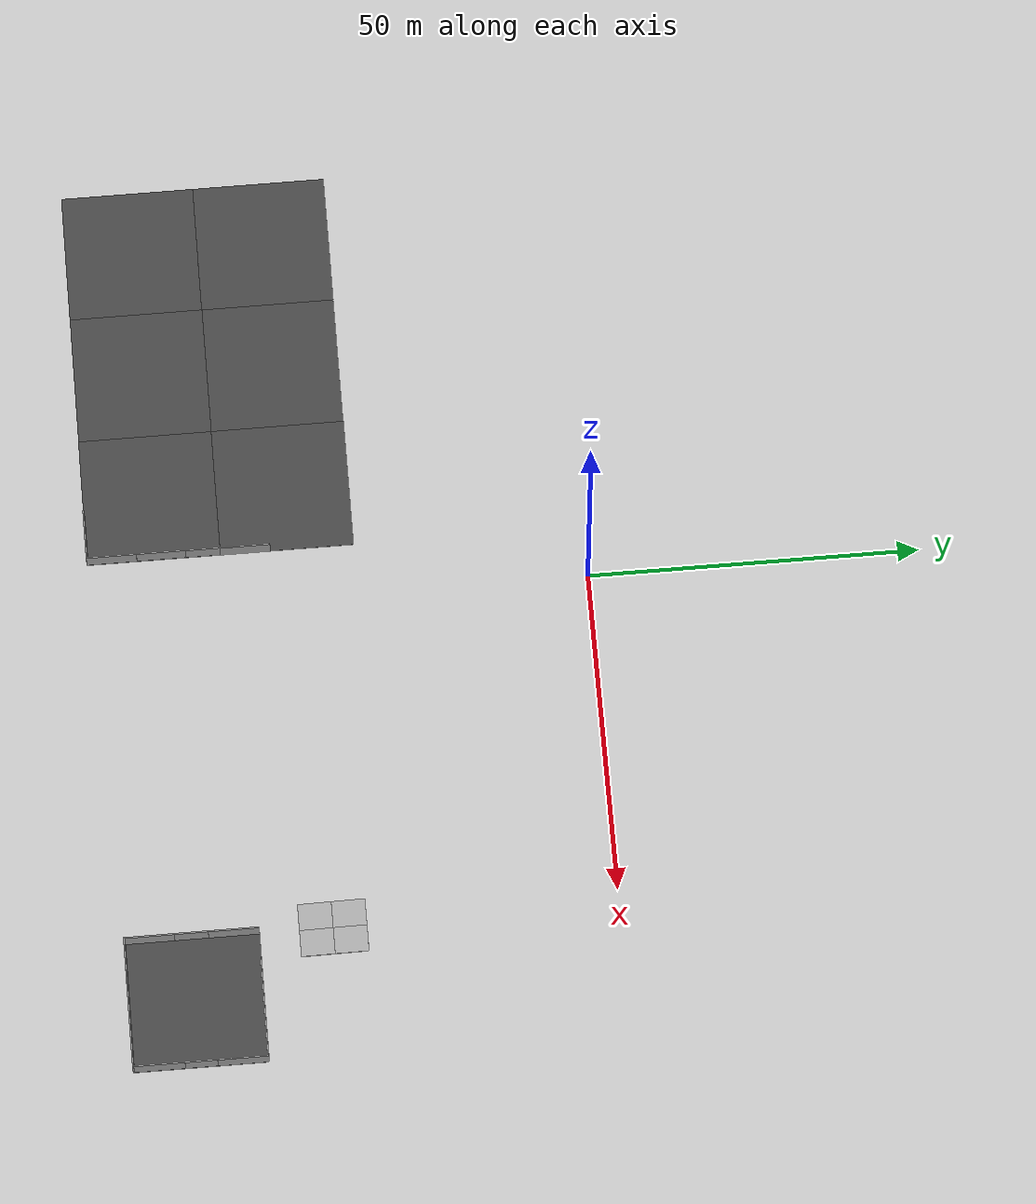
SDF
<sdf version="1.6">
 <world name="default">
  <light name="sun" type="directional">
   <pose>0 0 10 0 -0 0</pose>
   <diffuse>0.8 0.8 0.8 1</diffuse>
   <specular>0.1 0.1 0.1 1</specular>
   <attenuation>
    <range>1000</range>
    <constant>0.9</constant>
    <linear>0.01</linear>
    <quadratic>0.001</quadratic>
   </attenuation>
   <direction>-0.5 0.5 -1</direction>
  </light>
  <gravity>0 0 -9.8</gravity>
  <magnetic_field>6e-06 2.3e-05 -4.2e-05</magnetic_field>
  <atmosphere type="adiabatic"/>
  <physics name="default_physics" default="0" type="ode">
   <max_step_size>0.001</max_step_size>
   <real_time_factor>1</real_time_factor>
   <real_time_update_rate>1000</real_time_update_rate>
  </physics>
  <scene><ambient>0.4 0.4 0.4 1</ambient><background>0.7 0.7 0.7 1</background><shadows>1</shadows></scene>
  <spherical_coordinates>
   <surface_model>EARTH_WGS84</surface_model>
   <latitude_deg>0</latitude_deg>
   <longitude_deg>0</longitude_deg>
   <elevation>0</elevation>
   <heading_deg>0</heading_deg>
  </spherical_coordinates>
  <model name="asphalt_plane_clone">
   <static>1</static>
   <link name="link">
    <collision name="collision"><geometry><box><size>20 20 0.1</size></box></geometry></collision>
    <visual name="visual">
     <cast_shadows>0</cast_shadows>
     <geometry><box><size>20 20 0.1</size></box></geometry>
     <material>
      <script>
       <uri>model://asphalt_plane/materials/scripts</uri>
       <uri>model://asphalt_plane/materials/textures</uri>
       <name>vrc/asphalt</name>
      </script>
     </material>
    </visual>
   </link>
   <pose>64.596 -63.4137 6.93648 0 -0 0</pose>
  </model>
  <model name="grey_wall">
   <static>1</static>
   <link name="link">
    <pose>0 0 1.4 0 -0 0</pose>
    <collision name="collision"><geometry><box><size>7.5 0.2 2.8</size></box></geometry></collision>
    <visual name="visual">
     <cast_shadows>0</cast_shadows>
     <geometry><box><size>7.5 0.2 2.8</size></box></geometry>
     <material>
      <script>
       <uri>model://grey_wall/materials/scripts</uri>
       <uri>model://grey_wall/materials/textures</uri>
       <name>vrc/grey_wall</name>
      </script>
     </material>
    </visual>
   </link>
   <pose>70.8387 -73.3005 6.98711 0 -0 0</pose>
  </model>
  <model name="grey_wall_clone">
   <static>1</static>
   <link name="link">
    <pose>0 0 1.4 0 -0 0</pose>
    <collision name="collision"><geometry><box><size>7.5 0.2 2.8</size></box></geometry></collision>
    <visual name="visual">
     <cast_shadows>0</cast_shadows>
     <geometry><box><size>7.5 0.2 2.8</size></box></geometry>
     <material>
      <script>
       <uri>model://grey_wall/materials/scripts</uri>
       <uri>model://grey_wall/materials/textures</uri>
       <name>vrc/grey_wall</name>
      </script>
     </material>
    </visual>
   </link>
   <pose>63.3381 -73.2983 6.98711 0 -0 0</pose>
  </model>
  <model name="grey_wall_clone_clone">
   <static>1</static>
   <link name="link">
    <pose>0 0 1.4 0 -0 0</pose>
    <collision name="collision"><geometry><box><size>7.5 0.2 2.8</size></box></geometry></collision>
    <visual name="visual">
     <cast_shadows>0</cast_shadows>
     <geometry><box><size>7.5 0.2 2.8</size></box></geometry>
     <material>
      <script>
       <uri>model://grey_wall/materials/scripts</uri>
       <uri>model://grey_wall/materials/textures</uri>
       <name>vrc/grey_wall</name>
      </script>
     </material>
    </visual>
   </link>
   <pose>58.3665 -73.2963 6.98711 0 -0 0</pose>
  </model>
  <model name="grey_wall_clone_clone_clone">
   <static>1</static>
   <link name="link">
    <pose>0 0 1.4 0 -0 0</pose>
    <collision name="collision"><geometry><box><size>7.5 0.2 2.8</size></box></geometry></collision>
    <visual name="visual">
     <cast_shadows>0</cast_shadows>
     <geometry><box><size>7.5 0.2 2.8</size></box></geometry>
     <material>
      <script>
       <uri>model://grey_wall/materials/scripts</uri>
       <uri>model://grey_wall/materials/textures</uri>
       <name>vrc/grey_wall</name>
      </script>
     </material>
    </visual>
   </link>
   <pose>74.4793 -69.4504 6.98711 0 0 -1.5708</pose>
  </model>
  <model name="grey_wall_clone_clone_clone_clone">
   <static>1</static>
   <link name="link">
    <pose>0 0 1.4 0 -0 0</pose>
    <collision name="collision"><geometry><box><size>7.5 0.2 2.8</size></box></geometry></collision>
    <visual name="visual">
     <cast_shadows>0</cast_shadows>
     <geometry><box><size>7.5 0.2 2.8</size></box></geometry>
     <material>
      <script>
       <uri>model://grey_wall/materials/scripts</uri>
       <uri>model://grey_wall/materials/textures</uri>
       <name>vrc/grey_wall</name>
      </script>
     </material>
    </visual>
   </link>
   <pose>74.4795 -61.9543 6.98711 0 0 -1.5708</pose>
  </model>
  <model name="grey_wall_clone_clone_clone_clone_clone">
   <static>1</static>
   <link name="link">
    <pose>0 0 1.4 0 -0 0</pose>
    <collision name="collision"><geometry><box><size>7.5 0.2 2.8</size></box></geometry></collision>
    <visual name="visual">
     <cast_shadows>0</cast_shadows>
     <geometry><box><size>7.5 0.2 2.8</size></box></geometry>
     <material>
      <script>
       <uri>model://grey_wall/materials/scripts</uri>
       <uri>model://grey_wall/materials/textures</uri>
       <name>vrc/grey_wall</name>
      </script>
     </material>
    </visual>
   </link>
   <pose>74.4929 -57.1762 6.98711 0 0 -1.5708</pose>
  </model>
  <model name="grey_wall_clone_0">
   <static>1</static>
   <link name="link">
    <pose>0 0 1.4 0 -0 0</pose>
    <collision name="collision"><geometry><box><size>7.5 0.2 2.8</size></box></geometry></collision>
    <visual name="visual">
     <cast_shadows>0</cast_shadows>
     <geometry><box><size>7.5 0.2 2.8</size></box></geometry>
     <material>
      <script>
       <uri>model://grey_wall/materials/scripts</uri>
       <uri>model://grey_wall/materials/textures</uri>
       <name>vrc/grey_wall</name>
      </script>
     </material>
    </visual>
   </link>
   <pose>70.6554 -53.5245 6.98711 0 -0 0</pose>
  </model>
  <model name="grey_wall_clone_1">
   <static>1</static>
   <link name="link">
    <pose>0 0 1.4 0 -0 0</pose>
    <collision name="collision"><geometry><box><size>7.5 0.2 2.8</size></box></geometry></collision>
    <visual name="visual">
     <cast_shadows>0</cast_shadows>
     <geometry><box><size>7.5 0.2 2.8</size></box></geometry>
     <material>
      <script>
       <uri>model://grey_wall/materials/scripts</uri>
       <uri>model://grey_wall/materials/textures</uri>
       <name>vrc/grey_wall</name>
      </script>
     </material>
    </visual>
   </link>
   <pose>63.2035 -53.5304 6.98711 0 -0 0</pose>
  </model>
  <model name="grey_wall_clone_clone_clone_clone_clone_0">
   <static>1</static>
   <link name="link">
    <pose>0 0 1.4 0 -0 0</pose>
    <collision name="collision"><geometry><box><size>7.5 0.2 2.8</size></box></geometry></collision>
    <visual name="visual">
     <cast_shadows>0</cast_shadows>
     <geometry><box><size>7.5 0.2 2.8</size></box></geometry>
     <material>
      <script>
       <uri>model://grey_wall/materials/scripts</uri>
       <uri>model://grey_wall/materials/textures</uri>
       <name>vrc/grey_wall</name>
      </script>
     </material>
    </visual>
   </link>
   <pose>54.6986 -69.6501 6.98711 0 0 -1.5708</pose>
  </model>
  <model name="grey_wall_clone_clone_clone_clone_clone_0_clone">
   <static>1</static>
   <link name="link">
    <pose>0 0 1.4 0 -0 0</pose>
    <collision name="collision"><geometry><box><size>7.5 0.2 2.8</size></box></geometry></collision>
    <visual name="visual">
     <cast_shadows>0</cast_shadows>
     <geometry><box><size>7.5 0.2 2.8</size></box></geometry>
     <material>
      <script>
       <uri>model://grey_wall/materials/scripts</uri>
       <uri>model://grey_wall/materials/textures</uri>
       <name>vrc/grey_wall</name>
      </script>
     </material>
    </visual>
   </link>
   <pose>54.693 -62.1521 6.98711 0 0 -1.5708</pose>
  </model>
  <model name="grey_wall_clone_clone_clone_clone_clone_0_clone_clone">
   <static>1</static>
   <link name="link">
    <pose>0 0 1.4 0 -0 0</pose>
    <collision name="collision"><geometry><box><size>7.5 0.2 2.8</size></box></geometry></collision>
    <visual name="visual">
     <cast_shadows>0</cast_shadows>
     <geometry><box><size>7.5 0.2 2.8</size></box></geometry>
     <material>
      <script>
       <uri>model://grey_wall/materials/scripts</uri>
       <uri>model://grey_wall/materials/textures</uri>
       <name>vrc/grey_wall</name>
      </script>
     </material>
    </visual>
   </link>
   <pose>54.703 -57.1609 6.98711 0 0 -1.5708</pose>
  </model>
  <model name="mud_box">
   <static>1</static>
   <link name="link">
    <collision name="collision"><geometry><box><size>8 10 0.2</size></box></geometry></collision>
    <visual name="visual_1">
     <pose>-2 2.5 0 0 -0 0</pose>
     <cast_shadows>0</cast_shadows>
     <geometry><box><size>4 5 0.2</size></box></geometry>
     <material>
      <script>
       <uri>model://mud_box/materials/scripts</uri>
       <uri>model://mud_box/materials/textures</uri>
       <name>vrc/mud</name>
      </script>
     </material>
    </visual>
    <visual name="visual_2">
     <pose>2 2.5 0 0 -0 0</pose>
     <cast_shadows>0</cast_shadows>
     <geometry><box><size>4 5 0.2</size></box></geometry>
     <material>
      <script>
       <uri>model://mud_box/materials/scripts</uri>
       <uri>model://mud_box/materials/textures</uri>
       <name>vrc/mud</name>
      </script>
     </material>
    </visual>
    <visual name="visual_3">
     <pose>2 -2.5 0 0 -0 0</pose>
     <cast_shadows>0</cast_shadows>
     <geometry><box><size>4 5 0.2</size></box></geometry>
     <material>
      <script>
       <uri>model://mud_box/materials/scripts</uri>
       <uri>model://mud_box/materials/textures</uri>
       <name>vrc/mud</name>
      </script>
     </material>
    </visual>
    <visual name="visual_4">
     <pose>-2 -2.5 0 0 -0 0</pose>
     <cast_shadows>0</cast_shadows>
     <geometry><box><size>4 5 0.2</size></box></geometry>
     <material>
      <script>
       <uri>model://mud_box/materials/scripts</uri>
       <uri>model://mud_box/materials/textures</uri>
       <name>vrc/mud</name>
      </script>
     </material>
    </visual>
   </link>
   <pose>54.6056 -42.5642 6.54901 0.031957 0.042652 0.000909</pose>
  </model>
  <model name="asphalt_plane_clone_clone">
   <static>1</static>
   <link name="link">
    <collision name="collision"><geometry><box><size>20 20 0.1</size></box></geometry></collision>
    <visual name="visual">
     <cast_shadows>0</cast_shadows>
     <geometry><box><size>20 20 0.1</size></box></geometry>
     <material>
      <script>
       <uri>model://asphalt_plane/materials/scripts</uri>
       <uri>model://asphalt_plane/materials/textures</uri>
       <name>vrc/asphalt</name>
      </script>
     </material>
    </visual>
   </link>
   <pose>-35.2869 -64.885 6.93648 0 -0 0</pose>
  </model>
  <model name="asphalt_plane_clone_clone_clone">
   <static>1</static>
   <link name="link">
    <collision name="collision"><geometry><box><size>20 20 0.1</size></box></geometry></collision>
    <visual name="visual">
     <cast_shadows>0</cast_shadows>
     <geometry><box><size>20 20 0.1</size></box></geometry>
     <material>
      <script>
       <uri>model://asphalt_plane/materials/scripts</uri>
       <uri>model://asphalt_plane/materials/textures</uri>
       <name>vrc/asphalt</name>
      </script>
     </material>
    </visual>
   </link>
   <pose>-35.3042 -44.9639 6.93648 0 -0 0</pose>
  </model>
  <model name="asphalt_plane_clone_clone_clone_0">
   <static>1</static>
   <link name="link">
    <collision name="collision"><geometry><box><size>20 20 0.1</size></box></geometry></collision>
    <visual name="visual">
     <cast_shadows>0</cast_shadows>
     <geometry><box><size>20 20 0.1</size></box></geometry>
     <material>
      <script>
       <uri>model://asphalt_plane/materials/scripts</uri>
       <uri>model://asphalt_plane/materials/textures</uri>
       <name>vrc/asphalt</name>
      </script>
     </material>
    </visual>
   </link>
   <pose>-15.3333 -64.9155 6.93648 0 -0 0</pose>
  </model>
  <model name="asphalt_plane_clone_clone_clone_1">
   <static>1</static>
   <link name="link">
    <collision name="collision"><geometry><box><size>20 20 0.1</size></box></geometry></collision>
    <visual name="visual">
     <cast_shadows>0</cast_shadows>
     <geometry><box><size>20 20 0.1</size></box></geometry>
     <material>
      <script>
       <uri>model://asphalt_plane/materials/scripts</uri>
       <uri>model://asphalt_plane/materials/textures</uri>
       <name>vrc/asphalt</name>
      </script>
     </material>
    </visual>
   </link>
   <pose>-15.3435 -44.9169 6.93648 0 -0 0</pose>
  </model>
  <model name="asphalt_plane_clone_clone_clone_2">
   <static>1</static>
   <link name="link">
    <collision name="collision"><geometry><box><size>20 20 0.1</size></box></geometry></collision>
    <visual name="visual">
     <cast_shadows>0</cast_shadows>
     <geometry><box><size>20 20 0.1</size></box></geometry>
     <material>
      <script>
       <uri>model://asphalt_plane/materials/scripts</uri>
       <uri>model://asphalt_plane/materials/textures</uri>
       <name>vrc/asphalt</name>
      </script>
     </material>
    </visual>
   </link>
   <pose>-55.2598 -44.934 6.93648 0 -0 0</pose>
  </model>
  <model name="asphalt_plane_clone_clone_clone_3">
   <static>1</static>
   <link name="link">
    <collision name="collision"><geometry><box><size>20 20 0.1</size></box></geometry></collision>
    <visual name="visual">
     <cast_shadows>0</cast_shadows>
     <geometry><box><size>20 20 0.1</size></box></geometry>
     <material>
      <script>
       <uri>model://asphalt_plane/materials/scripts</uri>
       <uri>model://asphalt_plane/materials/textures</uri>
       <name>vrc/asphalt</name>
      </script>
     </material>
    </visual>
   </link>
   <pose>-55.261 -64.9059 6.93648 0 -0 0</pose>
  </model>
  <model name="grey_wall_clone_clone_clone_clone_clone_0_clone_clone_0">
   <static>1</static>
   <link name="link">
    <pose>0 0 1.4 0 -0 0</pose>
    <collision name="collision"><geometry><box><size>7.5 0.2 2.8</size></box></geometry></collision>
    <visual name="visual">
     <cast_shadows>0</cast_shadows>
     <geometry><box><size>7.5 0.2 2.8</size></box></geometry>
     <material>
      <script>
       <uri>model://grey_wall/materials/scripts</uri>
       <uri>model://grey_wall/materials/textures</uri>
       <name>vrc/grey_wall</name>
      </script>
     </material>
    </visual>
   </link>
   <pose>-5.45096 -71.1715 6.98711 0 0 -1.5708</pose>
  </model>
  <model name="grey_wall_clone_clone_clone_clone_clone_0_clone_clone_1">
   <static>1</static>
   <link name="link">
    <pose>0 0 1.4 0 -0 0</pose>
    <collision name="collision"><geometry><box><size>7.5 0.2 2.8</size></box></geometry></collision>
    <visual name="visual">
     <cast_shadows>0</cast_shadows>
     <geometry><box><size>7.5 0.2 2.8</size></box></geometry>
     <material>
      <script>
       <uri>model://grey_wall/materials/scripts</uri>
       <uri>model://grey_wall/materials/textures</uri>
       <name>vrc/grey_wall</name>
      </script>
     </material>
    </visual>
   </link>
   <pose>-5.45657 -63.6695 6.98711 0 0 -1.5708</pose>
  </model>
  <model name="grey_wall_clone_clone_clone_clone_clone_0_clone_clone_2">
   <static>1</static>
   <link name="link">
    <pose>0 0 1.4 0 -0 0</pose>
    <collision name="collision"><geometry><box><size>7.5 0.2 2.8</size></box></geometry></collision>
    <visual name="visual">
     <cast_shadows>0</cast_shadows>
     <geometry><box><size>7.5 0.2 2.8</size></box></geometry>
     <material>
      <script>
       <uri>model://grey_wall/materials/scripts</uri>
       <uri>model://grey_wall/materials/textures</uri>
       <name>vrc/grey_wall</name>
      </script>
     </material>
    </visual>
   </link>
   <pose>-5.43107 -56.3402 6.98711 0 0 -1.5708</pose>
  </model>
  <model name="grey_wall_clone_clone_clone_clone_clone_0_clone_clone_3">
   <static>1</static>
   <link name="link">
    <pose>0 0 1.4 0 -0 0</pose>
    <collision name="collision"><geometry><box><size>7.5 0.2 2.8</size></box></geometry></collision>
    <visual name="visual">
     <cast_shadows>0</cast_shadows>
     <geometry><box><size>7.5 0.2 2.8</size></box></geometry>
     <material>
      <script>
       <uri>model://grey_wall/materials/scripts</uri>
       <uri>model://grey_wall/materials/textures</uri>
       <name>vrc/grey_wall</name>
      </script>
     </material>
    </visual>
   </link>
   <pose>-5.39193 -51.1751 6.98711 0 0 -1.5708</pose>
  </model>
  <model name="grey_wall_clone_clone_clone_0">
   <static>1</static>
   <link name="link">
    <pose>0 0 1.4 0 -0 0</pose>
    <collision name="collision"><geometry><box><size>7.5 0.2 2.8</size></box></geometry></collision>
    <visual name="visual">
     <cast_shadows>0</cast_shadows>
     <geometry><box><size>7.5 0.2 2.8</size></box></geometry>
     <material>
      <script>
       <uri>model://grey_wall/materials/scripts</uri>
       <uri>model://grey_wall/materials/textures</uri>
       <name>vrc/grey_wall</name>
      </script>
     </material>
    </visual>
   </link>
   <pose>-9.27003 -74.8498 6.98711 0 -0 0</pose>
  </model>
 </world>
</sdf>
